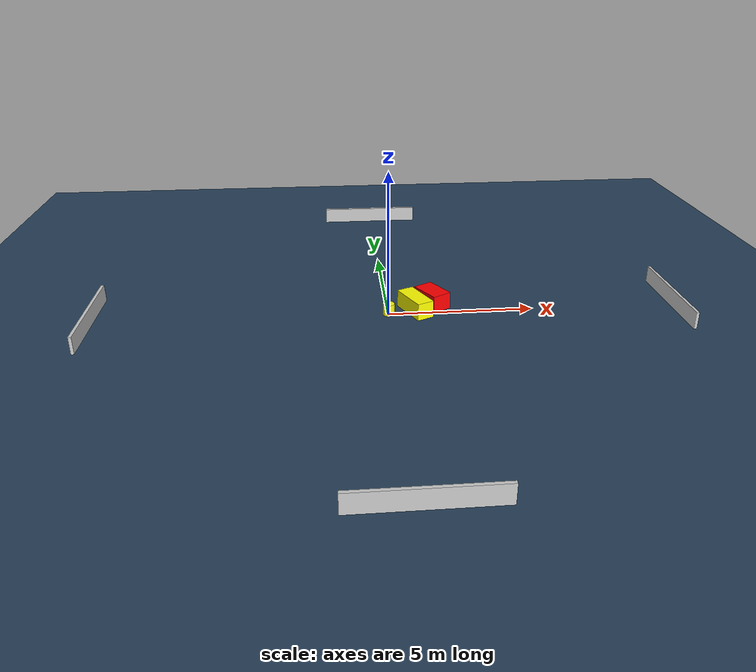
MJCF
<?xml version="1.0" ?>
<mujoco model="generated_environment">
  <option timestep="0.01" integrator="RK4" cone="elliptic"/>
  <default>
    <geom density="1"/>
  </default>
  <asset>
    <texture builtin="gradient" height="3072" name="skybox" rgb1="0.3 0.5 0.7" rgb2="0 0 0" type="skybox" width="512"/>
    <texture builtin="checker" height="300" name="groundplane" rgb1="0.2 0.3 0.4" rgb2="0.1 0.2 0.3" type="2d" width="300"/>
    <material name="groundplane" reflectance="0.2" texrepeat="5 5" texture="groundplane"/>
  </asset>
  <worldbody>
    <light dir="0 0 -1" directional="true" pos="0 0 1.5"/>
    <geom condim="3" friction="0.5 0.005 0.001" material="groundplane" name="floor" pos="0 0 0" size="0 0 0.05" type="plane"/>
    <body name="walls">
      <geom name="wall_1" condim="4" pos="-10.0 0.0 0.3" rgba="0.800000011920929 0.800000011920929 0.800000011920929 1.0" size="0.05 2.0 0.3" type="box"/>
      <geom name="wall_2" condim="4" pos="10.0 0.0 0.3" rgba="0.800000011920929 0.800000011920929 0.800000011920929 1.0" size="0.05 2.0 0.3" type="box"/>
      <geom name="wall_3" condim="4" pos="0.0 -10.0 0.3" rgba="0.800000011920929 0.800000011920929 0.800000011920929 1.0" size="2.0 0.05 0.3" type="box"/>
      <geom name="wall_4" condim="4" pos="0.0 10.0 0.3" rgba="0.800000011920929 0.800000011920929 0.800000011920929 1.0" size="2.0 0.05 0.3" type="box"/>
    </body>
    <body name="robot">
      <joint name="joint_x" type="slide" pos="0 0 0" axis="1 0 0"/>
      <joint name="joint_y" type="slide" pos="0 0 0" axis="0 1 0"/>
      <geom name="robot" type="cylinder" pos="0.0 0.0 0.2" size="0.2 0.2 0.0" mass="5.0" friction="1.0 0.005 0.0001" condim="4" rgba="1.0 1.0 0.0 1.0"/>
    </body>
    <body name="obstacle_1_movable">
      <geom name="obstacle_1_movable" condim="4" pos="0.9270692036697031 0.14381147052172955 0.3" euler="0 0 204.81983986305346" friction="0.0 0.005 0.001" rgba="1.0 1.0 0.0 1.0" size="0.30297143389490716 0.6874427035972119 0.3" type="box" mass="0.1"/>
      <joint type="free"/>
    </body>
    <body name="obstacle_2_static">
      <geom name="obstacle_2_static" condim="4" pos="1.5813048095028588 0.5969111326937002 0.3" euler="0 0 120.42923614188436" friction="0.0 0.005 0.001" rgba="1.0 0.0 0.0 1.0" size="0.556682673688376 0.3568521769452267 0.3" type="box"/>
    </body>
  </worldbody>
  <actuator>
    <motor name="actuator_x" joint="joint_x" gear="1" ctrlrange="-1 1"/>
    <motor name="actuator_y" joint="joint_y" gear="1" ctrlrange="-1 1"/>
  </actuator>
</mujoco>
